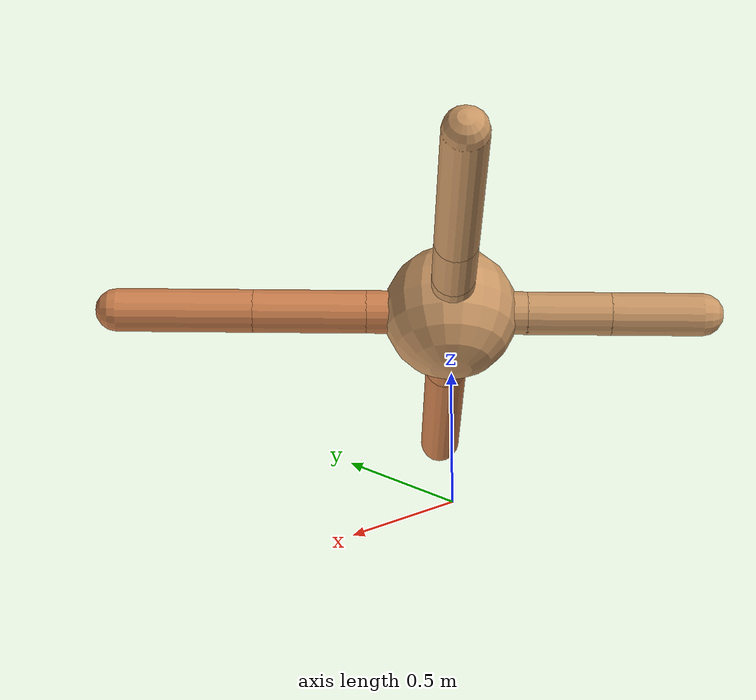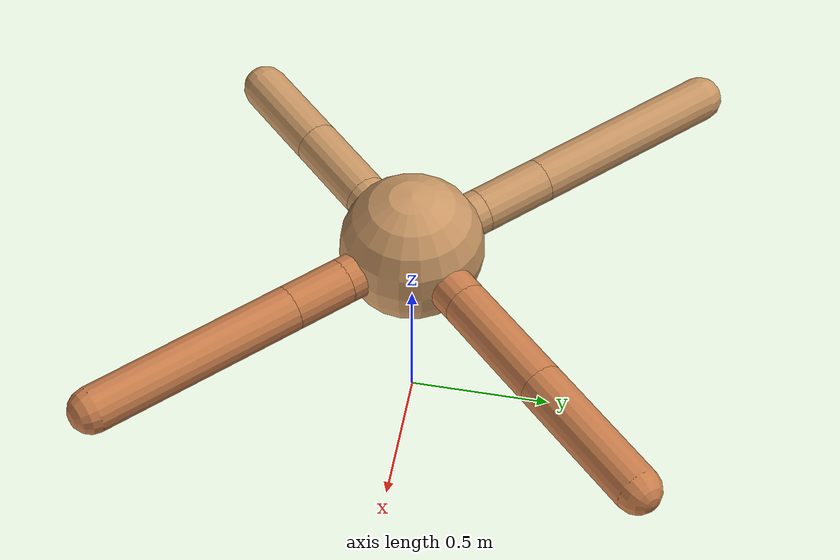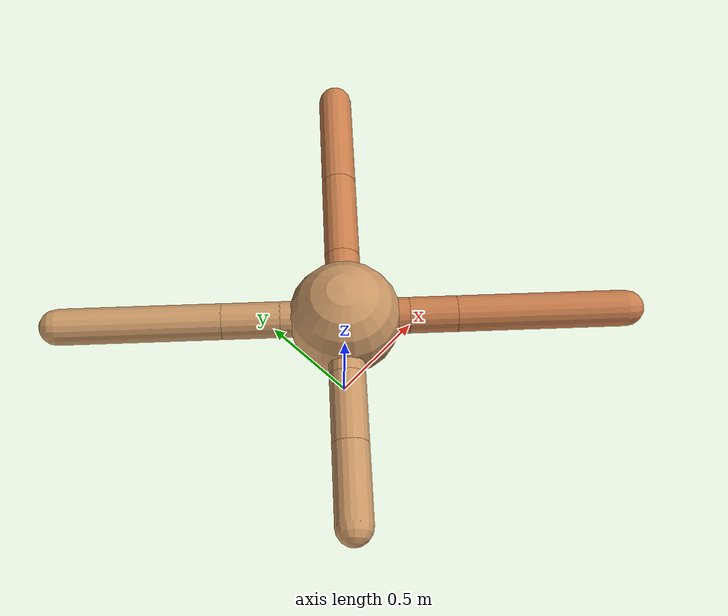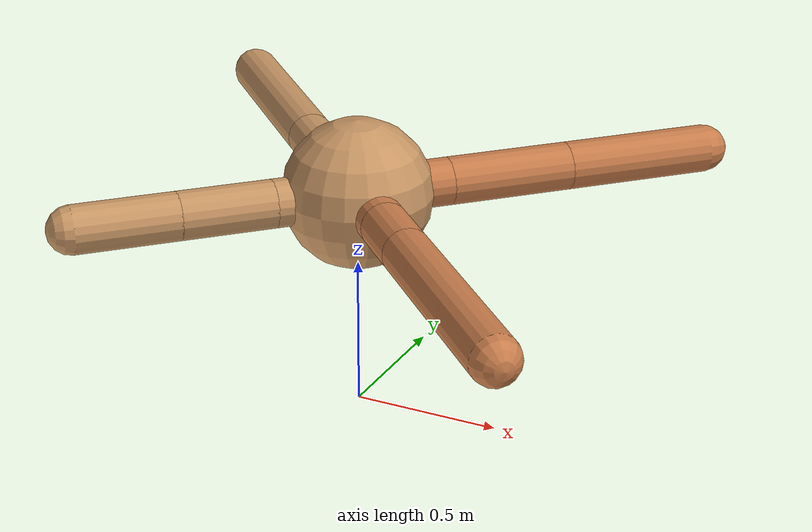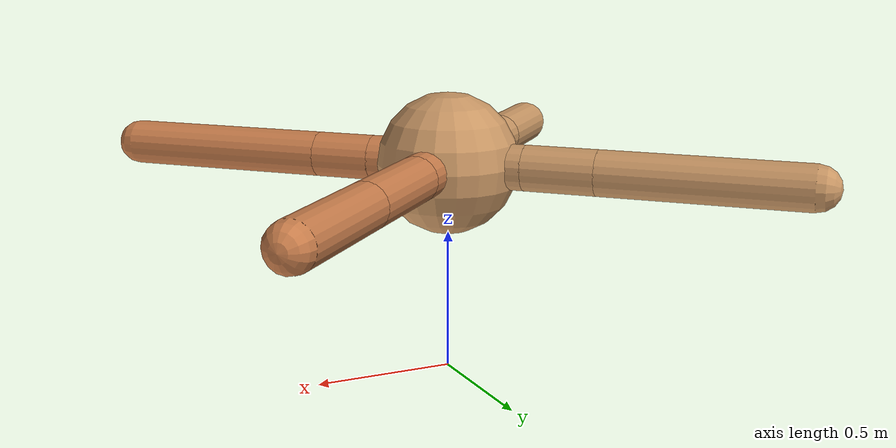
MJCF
<mujoco model="ant">
  <compiler angle="degree" coordinate="local" inertiafromgeom="true" />
  <option integrator="RK4" timestep="0.01" />
  <custom>
    <numeric data="0.0 0.0 0.55 1.0 0.0 0.0 0.0 0.0 1.0 0.0 -1.0 0.0 -1.0 0.0 1.0" name="init_qpos" />
  </custom>
  <default>
    <joint armature="1" damping="1" limited="true" />
    <geom conaffinity="0" condim="3" density="5.0" friction="1.5 0.1 0.1" margin="0.01" rgba="0.8 0.6 0.4 1" />
  </default>
  <worldbody>
    <body name="torso" pos="0 0 0.75">
      <geom name="torso_geom" pos="0 0 0" size="0.25" type="sphere" />

      <body name="front_left_leg" pos="0 0 0">
        <geom fromto="0.0 0.0 0.0 0.22138197405038548 0.22138197405038548 0.0" name="aux_1_geom" size="0.08" type="capsule" rgba=".8 .5 .3 1" />
        <body name="aux_1" pos="0.22138197405038548 0.22138197405038548 0.0">
          <joint axis="0 0 1" name="hip_1" pos="0.0 0.0 0.0" range="-40 40" type="hinge" />
          <geom fromto="0.0 0.0 0.0 0.2958939652500689 0.2958939652500689 0.0" name="left_leg_geom" size="0.08" type="capsule" rgba=".8 .5 .3 1" />
          <body pos="0.2958939652500689 0.2958939652500689 0.0" name="front_left_foot">
            <joint axis="-1 1 0" name="ankle_1" pos="0.0 0.0 0.0" range="30 100" type="hinge" />
            <geom fromto="0.0 0.0 0.0 0.3564431936526943 0.3564431936526943 0.0" name="left_ankle_geom" size="0.08" type="capsule" rgba=".8 .5 .3 1" />
          </body>
        </body>
      </body>
      <body name="front_right_leg" pos="0 0 0">
        <geom fromto="0.0 0.0 0.0 -0.2 0.2 0.0" name="aux_2_geom" size="0.08" type="capsule" />
        <body name="aux_2" pos="-0.2 0.2 0.0">
          <joint axis="0 0 1" name="hip_2" pos="0.0 0.0 0.0" range="-40 40" type="hinge" />
          <geom fromto="0.0 0.0 0.0 -0.18054891419265112 0.18054891419265112 0.0" name="right_leg_geom" size="0.08" type="capsule" />
          <body pos="-0.18054891419265112 0.18054891419265112 0.0" name="front_right_foot">
            <joint axis="1 1 0" name="ankle_2" pos="0.0 0.0 0.0" range="-100 -30" type="hinge" />
            <geom fromto="0.0 0.0 0.0 -0.5097362562425957 0.5097362562425957 0.0" name="right_ankle_geom" size="0.08" type="capsule" />
          </body>
        </body>
      </body>
      <body name="left_back_leg" pos="0 0 0">
        <geom fromto="0.0 0.0 0.0 -0.2 -0.2 0.0" name="aux_3_geom" size="0.08" type="capsule" />
        <body name="aux_3" pos="-0.2 -0.2 0.0">
          <joint axis="0 0 1" name="hip_3" pos="0.0 0.0 0.0" range="-40 40" type="hinge" />
          <geom fromto="0.0 0.0 0.0 -0.22054642162739838 -0.22054642162739838 0.0" name="back_leg_geom" size="0.08" type="capsule" />
          <body pos="-0.22054642162739838 -0.22054642162739838 0.0" name="left_back_foot">
            <joint axis="-1 1 0" name="ankle_3" pos="0.0 0.0 0.0" range="-100 -30" type="hinge" />
            <geom fromto="0.0 0.0 0.0 -0.24210179604230633 -0.24210179604230633 0.0" name="third_ankle_geom" size="0.08" type="capsule" />
          </body>
        </body>
      </body>
      <body name="right_back_leg" pos="0 0 0">
        <geom fromto="0.0 0.0 0.0 0.2 -0.2 0.0" name="aux_4_geom" size="0.08" type="capsule" rgba=".8 .5 .3 1" />
        <body name="aux_4" pos="0.2 -0.2 0.0">
          <joint axis="0 0 1" name="hip_4" pos="0.0 0.0 0.0" range="-40 40" type="hinge" />
          <geom fromto="0.0 0.0 0.0 0.14892308810054986 -0.14892308810054986 0.0" name="rightback_leg_geom" size="0.08" type="capsule" rgba=".8 .5 .3 1" />
          <body pos="0.14892308810054986 -0.14892308810054986 0.0" name="right_back_foot">
            <joint axis="1 1 0" name="ankle_4" pos="0.0 0.0 0.0" range="30 100" type="hinge" />
            <geom fromto="0.0 0.0 0.0 0.5304668339636147 -0.5304668339636147 0.0" name="fourth_ankle_geom" size="0.08" type="capsule" rgba=".8 .5 .3 1" />
          </body>
        </body>
      </body>
    </body>
  </worldbody>
  <actuator>
    <motor ctrllimited="true" ctrlrange="-1.0 1.0" joint="hip_4" gear="150" />
    <motor ctrllimited="true" ctrlrange="-1.0 1.0" joint="ankle_4" gear="150" />
    <motor ctrllimited="true" ctrlrange="-1.0 1.0" joint="hip_1" gear="150" />
    <motor ctrllimited="true" ctrlrange="-1.0 1.0" joint="ankle_1" gear="150" />
    <motor ctrllimited="true" ctrlrange="-1.0 1.0" joint="hip_2" gear="150" />
    <motor ctrllimited="true" ctrlrange="-1.0 1.0" joint="ankle_2" gear="150" />
    <motor ctrllimited="true" ctrlrange="-1.0 1.0" joint="hip_3" gear="150" />
    <motor ctrllimited="true" ctrlrange="-1.0 1.0" joint="ankle_3" gear="150" />
  </actuator>
</mujoco>
